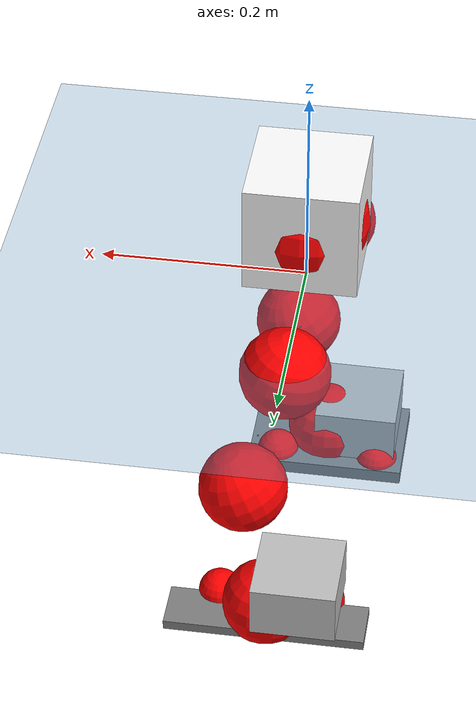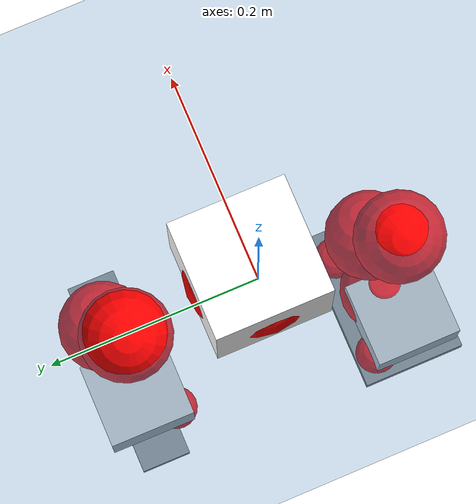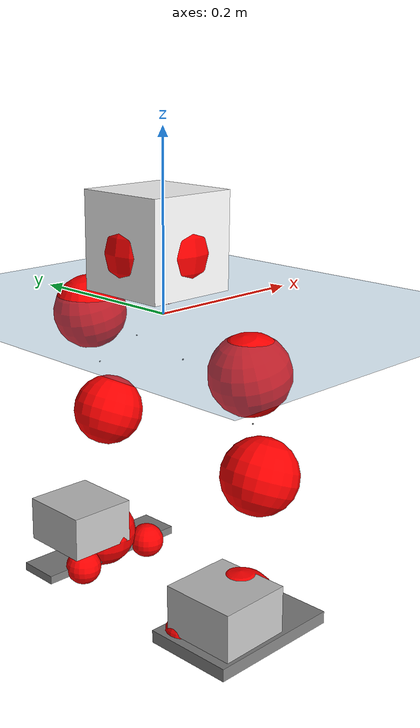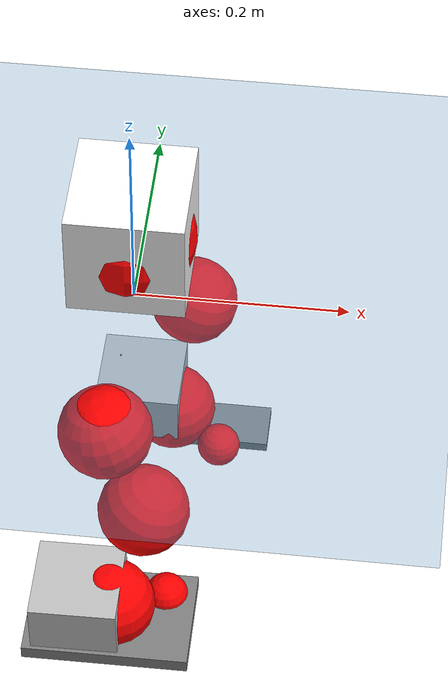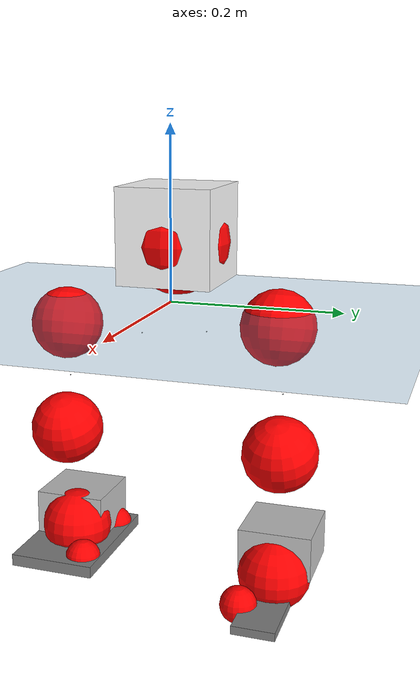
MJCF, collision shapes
<mujoco model="pi_12dof_release_v1">
  <compiler angle="radian" assetdir="assets" balanceinertia="true" inertiafromgeom="false"/>

  <option timestep="0.005" density="1.2" viscosity="2e-05"/>

  <size nkey="1"/>

  <visual>
    <quality shadowsize="8192"/>
    <map shadowclip="0.5"/>
  </visual>

  <default>
    <default class="/">
      <joint armature="0.01" damping="0.01" frictionloss="0.01"/>
      <geom contype="0" conaffinity="0" group="1" solref="-1000 -80"/>
      <site size="0.01 0.005 0.005" group="5"/>
      <general forcelimited="true" biastype="affine" gainprm="20" biasprm="0 -20 -0.5"/>
      <default class="foot">
        <geom size="0.0845 0.036 0.005" type="box" condim="6" group="4" priority="1" friction="0.9 0.2 0.2" solimp="0.015 1 0.005"/>
      </default>
      <default class="reward_collision_sphere">
        <geom group="5" rgba="1 0 0 1"/>
      </default>
    </default>
  </default>

  <asset>
    <texture type="skybox" colorspace="auto" name="//unnamed_texture_0" builtin="gradient" rgb1="0.95 0.95 0.95" rgb2="0.95 0.95 0.95" width="100" height="600"/>
    <texture type="2d" colorspace="auto" name="texplane" builtin="checker" rgb1="0.345 0.575 0.748" rgb2="0.345 0.575 0.748" markrgb="1 1 1" width="512" height="512"/>
    <material name="MatPlane" class="/" texture="texplane" texuniform="true" texrepeat="2 2" specular="0.9"/>
    <mesh name="baselink_1" class="/" file="baselink_1.STL"/>
    <mesh name="r_hip_pitch_link" class="/" file="r_hip_pitch_link.STL"/>
    <mesh name="r_hip_roll_link" class="/" file="r_hip_roll_link.STL"/>
    <mesh name="r_thigh_link" class="/" file="r_thigh_link.STL"/>
    <mesh name="r_calf_link" class="/" file="r_calf_link.STL"/>
    <mesh name="r_ankle_pitch_link" class="/" file="r_ankle_pitch_link.STL"/>
    <mesh name="r_ankle_roll_link" class="/" file="r_ankle_roll_link.STL"/>
    <mesh name="l_hip_pitch_link" class="/" file="l_hip_pitch_link.STL"/>
    <mesh name="l_hip_roll_link" class="/" file="l_hip_roll_link.STL"/>
    <mesh name="l_thigh_link" class="/" file="l_thigh_link.STL"/>
    <mesh name="l_calf_link" class="/" file="l_calf_link.STL"/>
    <mesh name="l_ankle_pitch_link" class="/" file="l_ankle_pitch_link.STL"/>
    <mesh name="l_ankle_roll_link" class="/" file="l_ankle_roll_link.STL"/>
  </asset>

  <worldbody>
    <geom name="floor" class="/" size="100 100 0.125" type="plane" group="0" material="MatPlane"/>
    <light name="toplight_shadow" class="/" pos="0 0 5" dir="0.0990148 0.0990148 -0.990148" type="directional" ambient="0.04 0.04 0.04" diffuse="0.55 0.55 0.55" specular="0.12 0.12 0.12"/>
    <light name="toplight_fill" class="/" pos="0 0 5" dir="0.0990148 0.0990148 -0.990148" type="directional" castshadow="false" ambient="0.04 0.04 0.04" diffuse="0.3 0.3 0.3" specular="0.08 0.08 0.08"/>
    <body name="trunk" pos="-0.00113727 0.00802512 0.000965333" quat="1 -1.0673e-05 -6.84156e-05 4.60826e-06">
      <inertial pos="-3.99897e-05 0.00863945 0.0396053" quat="0.72934 0.0487845 0.0125592 0.682294" mass="2.84162" diaginertia="0.00303118 0.0707705 0.00390624"/>
      <joint name="//unnamed_joint_0" type="free"/>
      <geom name="//unnamed_geom_1" class="/" type="mesh" density="0" rgba="1 1 1 1" mesh="baselink_1"/>
      <geom name="//unnamed_geom_2" class="/" size="0.0544348 0.0544348 0.0544348" pos="0 0 0.0789534" type="box" rgba="1 1 1 1"/>
      <geom name="//unnamed_geom_3" class="reward_collision_sphere" size="0.0598782" pos="0 0 0.0690842"/>
      <site name="imu" class="/" pos="-0.0384597 -0.0267221 0.0400482" size="0.010887"/>
      <camera name="track" class="/" pos="0 -2.99657 0" quat="0.707107 0.707107 0 0" mode="trackcom"/>
      <camera name="ego_camera" class="/" pos="0.0585662 0 0.177645" quat="-0.5 -0.5 0.5 0.5"/>
      <body name="r_hip_pitch_link" pos="-0.00672715 -0.0470907 -0.0426187" quat="0.991751 0.00225393 -0.128159 0.00077047">
        <inertial pos="0.00110978 -0.0852914 -0.00473159" quat="-0.0195607 0.707422 -0.0313711 0.705824" mass="0.514138" diaginertia="3.12745e-05 0.000810611 7.55748e-05"/>
        <joint name="r_hip_pitch_joint" class="/" pos="0 0 0" axis="-0.0025306 -0.999878 0.0154316" stiffness="0.00358208" range="-1.72541 1.35207" armature="0.0117657" damping="0.0228812" frictionloss="0.0115872"/>
        <geom name="//unnamed_geom_4" class="/" type="mesh" density="0" rgba="0.75294 0.75294 0.75294 1" mesh="r_hip_pitch_link"/>
        <geom name="//unnamed_geom_5" class="/" size="0.000544348 0.000544348 0.000544348" type="box" rgba="0.75294 0.75294 0.75294 1"/>
        <body name="r_hip_roll_link" pos="0.00016776 -0.0973628 0.00573447" quat="0.999994 -0.0022467 -0.00273846 -0.000213879">
          <inertial pos="-0.00842315 -0.00539639 -0.0641527" quat="0.691064 -0.0444567 -0.062327 0.718728" mass="0.500672" diaginertia="9.98324e-05 0.00214271 0.000125551"/>
          <joint name="r_hip_roll_joint" class="/" pos="0 0 0" axis="-0.999485 0.0300227 0.0113355" stiffness="0.01393" range="-0.149728 0.322343" armature="0.0147366" damping="0.0813909" frictionloss="0.0101909"/>
          <geom name="//unnamed_geom_6" class="/" type="mesh" density="0" rgba="0.75294 0.75294 0.75294 1" mesh="r_hip_roll_link"/>
          <geom name="//unnamed_geom_7" class="/" size="0.000544348 0.000544348 0.000544348" type="box" rgba="0.75294 0.75294 0.75294 1"/>
          <geom name="//unnamed_geom_8" class="reward_collision_sphere" size="0.0435478"/>
          <body name="r_thigh_link" pos="0.00203641 0.0105265 -0.0627556" quat="0.999997 -0.0024209 0.000148166 -0.000172437">
            <inertial pos="-0.0062877 0.00215795 -0.0351582" quat="0.73711 0.675751 -0.00379117 0.00391369" mass="0.146746" diaginertia="4.04266e-05 0.000625577 6.28519e-05"/>
            <joint name="r_thigh_joint" class="/" pos="0 0 0" axis="0.00834158 -0.0133736 -0.999876" stiffness="0.0272162" range="-0.161992 0.586169" armature="0.0129372" damping="0.00854041" frictionloss="0.0117047"/>
            <geom name="//unnamed_geom_9" class="/" type="mesh" density="0" rgba="0.75294 0.75294 0.75294 1" mesh="r_thigh_link"/>
            <geom name="//unnamed_geom_10" class="/" size="0.000544348 0.000544348 0.000544348" type="box" rgba="0.75294 0.75294 0.75294 1"/>
            <body name="r_calf_link" pos="-0.00343067 0.00032316 -0.064343" quat="0.947705 -0.000275253 0.319147 0.000683851">
              <inertial pos="0.00255615 -0.00264499 -0.0699349" quat="0.999953 0.000986845 -0.00278022 0.00920107" mass="1.19078" diaginertia="0.00106281 0.0309937 0.000148228"/>
              <joint name="r_calf_joint" class="/" pos="0 0 0" axis="-0.00119712 -0.999652 -0.0263683" stiffness="0.0220329" range="-1.90049 0.551676" armature="0.011676" damping="0.0108068" frictionloss="0.00842495"/>
              <geom name="//unnamed_geom_11" class="/" type="mesh" density="0" rgba="0.75294 0.75294 0.75294 1" mesh="r_calf_link"/>
              <geom name="//unnamed_geom_12" class="/" size="0.000544348 0.000544348 0.000544348" type="box" rgba="0.75294 0.75294 0.75294 1"/>
              <geom name="//unnamed_geom_13" class="reward_collision_sphere" size="0.0435478"/>
              <body name="r_ankle_pitch_link" pos="-0.0109689 -0.012012 -0.143979" quat="0.980001 -0.000391789 -0.198978 0.00220202">
                <inertial pos="0.00810944 0.0172758 -0.00159947" quat="-0.00947328 0.710056 -0.028158 0.703518" mass="0.183941" diaginertia="8.0554e-05 0.00148768 0.000103682"/>
                <joint name="r_ankle_pitch_joint" class="/" pos="0 0 0" axis="0.0543108 -0.998524 0.000786045" range="-1.38476 0.287265" armature="0.0115651" damping="0" frictionloss="0.0124681"/>
                <geom name="//unnamed_geom_14" class="/" type="mesh" density="0" rgba="0.75294 0.75294 0.75294 1" mesh="r_ankle_pitch_link"/>
                <geom name="//unnamed_geom_15" class="/" size="0.0424591 0.0435478 0.0272174" type="box" rgba="0.75294 0.75294 0.75294 1"/>
                <body name="r_ankle_roll_link" pos="0.0698387 0.00580826 0.00649542" quat="0.999989 -0.00102552 0.00438872 -0.00124152">
                  <inertial pos="-0.0215632 0.00214345 -0.0211157" quat="0.549821 0.42784 0.460399 0.550166" mass="0.673572" diaginertia="0.000322712 0.00780995 0.000256224"/>
                  <joint name="r_ankle_roll_joint" class="/" pos="0 0 0" axis="-0.99998 0.00455497 -0.00428758" range="0.0807353 0.18309" armature="0.0116329" damping="0.00845672" frictionloss="0.0134497"/>
                  <geom name="//unnamed_geom_16" class="/" type="mesh" density="0" rgba="0.75294 0.75294 0.75294 1" mesh="r_ankle_roll_link"/>
                  <geom name="//unnamed_geom_17" class="/" type="mesh" rgba="0.75294 0.75294 0.75294 1" mesh="r_ankle_roll_link"/>
                  <geom name="right_foot" class="foot" size="0.0810485 0.0522379 0.00718937" pos="-0.039825 0 -0.0434244"/>
                  <geom name="//unnamed_geom_19" class="reward_collision_sphere" size="0.0435478" pos="-0.0390441 0 -0.0197383"/>
                  <geom name="//unnamed_geom_20" class="reward_collision_sphere" size="0.0217739" pos="0.0117132 0.0299657 -0.0394767"/>
                  <geom name="//unnamed_geom_21" class="reward_collision_sphere" size="0.0217739" pos="-0.0937059 0.0299657 -0.0394767"/>
                  <site name="right_foot" class="foot" pos="-0.039825 0 -0.0434244" size="0.010887"/>
                </body>
              </body>
            </body>
          </body>
        </body>
      </body>
      <body name="l_hip_pitch_link" pos="0.000691389 0.0349821 -0.0333217" quat="0.992267 -0.00080175 -0.124113 0.000834805">
        <inertial pos="0.0023962 0.0902455 -0.00533819" quat="-0.0295176 0.706851 0.0275757 0.706208" mass="0.46889" diaginertia="3.59449e-05 0.000757207 8.86289e-05"/>
        <joint name="l_hip_pitch_joint" class="/" pos="0 0 0" axis="0.00355556 0.99996 0.0082354" range="-1.22184 1.73457" armature="0.0104861" damping="0.0462706" frictionloss="0.00727802"/>
        <geom name="//unnamed_geom_22" class="/" type="mesh" density="0" rgba="0.75294 0.75294 0.75294 1" mesh="l_hip_pitch_link"/>
        <geom name="//unnamed_geom_23" class="/" size="0.000544348 0.000544348 0.000544348" type="box" rgba="0.75294 0.75294 0.75294 1"/>
        <body name="l_hip_roll_link" pos="0.00599704 0.085016 0.011035" quat="1 6.87903e-05 -0.000174599 0.000508796">
          <inertial pos="0.0025423 -0.000563077 -0.0490348" quat="0.7083 -0.0506309 -0.0724509 0.700356" mass="0.407864" diaginertia="9.49199e-05 0.00192885 0.00011448"/>
          <joint name="l_hip_roll_joint" class="/" pos="0 0 0" axis="-0.999132 -0.0272847 0.0314788" stiffness="0.0101439" range="-0.283333 0.0888888" armature="0.00616654" damping="0.00672861" frictionloss="0.00926779"/>
          <geom name="//unnamed_geom_24" class="/" type="mesh" density="0" rgba="0.75294 0.75294 0.75294 1" mesh="l_hip_roll_link"/>
          <geom name="//unnamed_geom_25" class="/" size="0.000544348 0.000544348 0.000544348" type="box" rgba="0.75294 0.75294 0.75294 1"/>
          <geom name="//unnamed_geom_26" class="reward_collision_sphere" size="0.0435478"/>
          <body name="l_thigh_link" pos="0.00561907 0.012312 -0.0732679" quat="1 0.000425358 0.000445822 -0.00019953">
            <inertial pos="-0.000131886 -0.00297869 -0.0474652" quat="0.672983 0.739631 0.00616885 -0.0011525" mass="0.125001" diaginertia="2.96689e-05 0.000651598 5.04756e-05"/>
            <joint name="l_thigh_joint" class="/" pos="0 0 0" axis="0.00296289 0.00280143 -0.999992" range="-0.599187 0.305875" armature="0.0140934" damping="0" frictionloss="0.0106489"/>
            <geom name="//unnamed_geom_27" class="/" type="mesh" density="0" rgba="0.75294 0.75294 0.75294 1" mesh="l_thigh_link"/>
            <geom name="//unnamed_geom_28" class="/" size="0.000544348 0.000544348 0.000544348" type="box" rgba="0.75294 0.75294 0.75294 1"/>
            <body name="l_calf_link" pos="-0.0027361 0.00175032 -0.0674416" quat="0.946851 0.00326068 0.321648 0.00225068">
              <inertial pos="-0.00133735 -0.00338391 -0.0624013" quat="0.999938 0.00696763 0.00382317 0.00779567" mass="0.997129" diaginertia="0.000861065 0.0237185 0.000132362"/>
              <joint name="l_calf_joint" class="/" pos="0 0 0" axis="0.0310729 0.999486 0.00789926" stiffness="0.0124359" range="-0.670803 1.71945" armature="0.00999569" damping="0" frictionloss="0.00943464"/>
              <geom name="//unnamed_geom_29" class="/" type="mesh" density="0" rgba="0.75294 0.75294 0.75294 1" mesh="l_calf_link"/>
              <geom name="//unnamed_geom_30" class="/" size="0.000544348 0.000544348 0.000544348" type="box" rgba="0.75294 0.75294 0.75294 1"/>
              <geom name="//unnamed_geom_31" class="reward_collision_sphere" size="0.0435478"/>
              <body name="l_ankle_pitch_link" pos="0.00222562 -0.00698739 -0.142114" quat="0.979764 0.000366044 -0.2001 -0.0047624">
                <inertial pos="0.00301108 0.00899199 -0.00565539" quat="-0.00594886 0.705766 0.00112248 0.708419" mass="0.247697" diaginertia="9.69445e-05 0.00182993 0.000120258"/>
                <joint name="l_ankle_pitch_joint" class="/" pos="0 0 0" axis="0.0197294 0.999802 -0.00252326" stiffness="0.0133227" range="-0.341835 1.18046" armature="0.0112958" damping="0" frictionloss="0.0109259"/>
                <geom name="//unnamed_geom_32" class="/" type="mesh" density="0" rgba="0.75294 0.75294 0.75294 1" mesh="l_ankle_pitch_link"/>
                <geom name="//unnamed_geom_33" class="/" size="0.0424591 0.0435478 0.0272174" type="box" rgba="0.75294 0.75294 0.75294 1"/>
                <body name="l_ankle_roll_link" pos="0.0717361 -0.000840777 -0.00641648" quat="0.999998 -0.00171738 -0.000734431 0.000864893">
                  <inertial pos="-0.0312678 -0.000685306 -0.0124672" quat="0.547527 0.437303 0.435083 0.565406" mass="0.671247" diaginertia="0.000291783 0.00812895 0.000268097"/>
                  <joint name="l_ankle_roll_joint" class="/" pos="0 0 0" axis="-0.998232 -0.0582357 0.0119179" stiffness="0.0170641" range="-0.388487 0.306476" armature="0.00554443" damping="0" frictionloss="0.0159076"/>
                  <geom name="//unnamed_geom_34" class="/" type="mesh" density="0" rgba="0.75294 0.75294 0.75294 1" mesh="l_ankle_roll_link"/>
                  <geom name="//unnamed_geom_35" class="/" type="mesh" rgba="0.75294 0.75294 0.75294 1" mesh="l_ankle_roll_link"/>
                  <geom name="left_foot" class="foot" size="0.101127 0.0251438 0.00506812" pos="-0.039825 0 -0.0434244"/>
                  <geom name="//unnamed_geom_37" class="reward_collision_sphere" size="0.0435478" pos="-0.0390441 0 -0.0197383"/>
                  <geom name="//unnamed_geom_38" class="reward_collision_sphere" size="0.0217739" pos="0.0117132 -0.0299657 -0.0394767"/>
                  <geom name="//unnamed_geom_39" class="reward_collision_sphere" size="0.0217739" pos="-0.0937059 -0.0299657 -0.0394767"/>
                  <site name="left_foot" class="foot" pos="-0.039825 0 -0.0434244" size="0.010887"/>
                </body>
              </body>
            </body>
          </body>
        </body>
      </body>
    </body>
  </worldbody>

  <contact>
    <pair class="/" geom1="floor" geom2="right_foot" name="//unnamed_contact_1"/>
    <pair class="/" geom1="floor" geom2="left_foot" name="//unnamed_contact_0"/>
  </contact>

  <actuator>
    <general name="r_hip_pitch_joint" class="/" joint="r_hip_pitch_joint" forcerange="-24.228 24.228" gainprm="24.8584" biasprm="0 -24.8584 -0.58556"/>
    <general name="r_hip_roll_joint" class="/" joint="r_hip_roll_joint" forcerange="-23.3155 23.3155" gainprm="24.8584" biasprm="0 -24.8584 -0.58556"/>
    <general name="r_thigh_joint" class="/" joint="r_thigh_joint" forcerange="-17.1551 17.1551" gainprm="24.8584" biasprm="0 -24.8584 -0.58556"/>
    <general name="r_calf_joint" class="/" joint="r_calf_joint" forcerange="-31.1597 31.1597" gainprm="24.8584" biasprm="0 -24.8584 -0.58556"/>
    <general name="r_ankle_pitch_joint" class="/" joint="r_ankle_pitch_joint" forcerange="-13.6744 13.6744" gainprm="24.8584" biasprm="0 -24.8584 -0.58556"/>
    <general name="r_ankle_roll_joint" class="/" joint="r_ankle_roll_joint" forcerange="-13.5964 13.5964" gainprm="24.8584" biasprm="0 -24.8584 -0.58556"/>
    <general name="l_hip_pitch_joint" class="/" joint="l_hip_pitch_joint" forcerange="-12.236 12.236" gainprm="24.8584" biasprm="0 -24.8584 -0.58556"/>
    <general name="l_hip_roll_joint" class="/" joint="l_hip_roll_joint" forcerange="-28.5921 28.5921" gainprm="24.8584" biasprm="0 -24.8584 -0.58556"/>
    <general name="l_thigh_joint" class="/" joint="l_thigh_joint" forcerange="-24.6382 24.6382" gainprm="24.8584" biasprm="0 -24.8584 -0.58556"/>
    <general name="l_calf_joint" class="/" joint="l_calf_joint" forcerange="-13.6602 13.6602" gainprm="24.8584" biasprm="0 -24.8584 -0.58556"/>
    <general name="l_ankle_pitch_joint" class="/" joint="l_ankle_pitch_joint" forcerange="-13.6281 13.6281" gainprm="24.8584" biasprm="0 -24.8584 -0.58556"/>
    <general name="l_ankle_roll_joint" class="/" joint="l_ankle_roll_joint" forcerange="-17.2986 17.2986" gainprm="24.8584" biasprm="0 -24.8584 -0.58556"/>
  </actuator>

  <sensor>
    <gyro site="imu" name="imu_angular_velocity"/>
    <velocimeter site="imu" name="imu_linear_velocity"/>
    <framelinvel objtype="site" objname="left_foot" name="left_foot_global_linear_velocity"/>
    <framelinvel objtype="site" objname="right_foot" name="right_foot_global_linear_velocity"/>
  </sensor>

  <keyframe>
    <key name="home" qpos="0 0 0.291 1 0 0 0 0.4 0 0 -0.8 0.4 0 -0.4 0 0 0.8 -0.4 0"/>
  </keyframe>
</mujoco>
